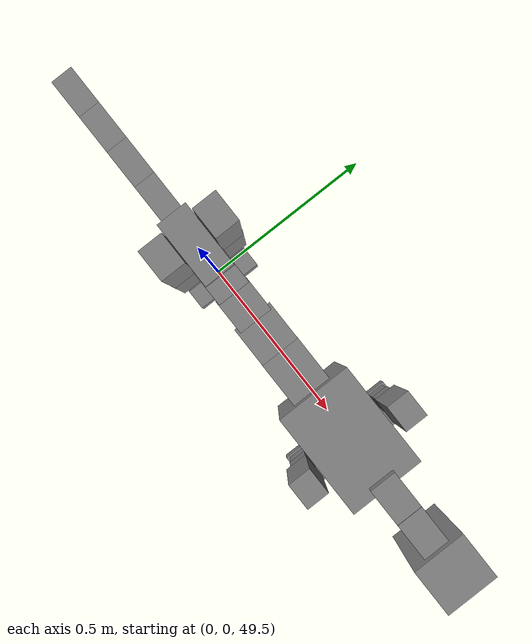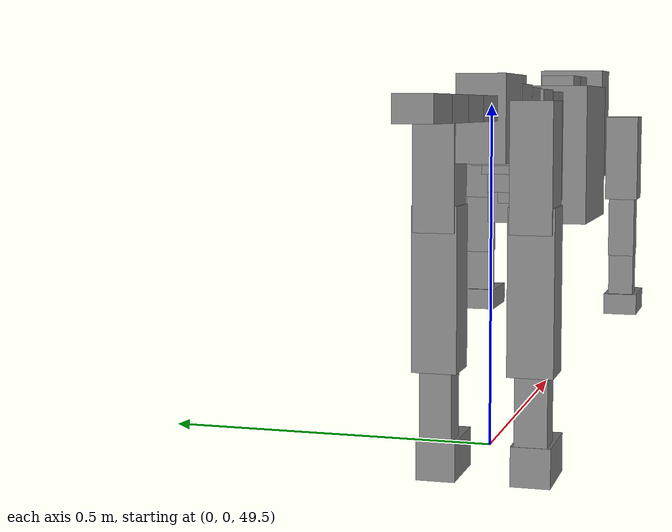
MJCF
<mujoco model="dog">

    <default>
        <joint armature="0.02" stiffness="1" damping="0.2" limited="true"/>
        <geom condim="3" friction="1 0.05 0.05" margin="0.01"/>
        <motor ctrllimited="true" ctrlrange="-1.0 1.0" forcelimited="true" gear="50"/>
    </default>

    <compiler inertiafromgeom="true" angle="radian"/>

    <option timestep="0.016" iterations="50" tolerance="1e-10" solver="Newton" jacobian="dense" cone="pyramidal"/>

    <size nconmax="20000" njmax="60000" nstack="5000000"/>
    <visual>
        <map force="0.1" zfar="30"/>
        <rgba haze="0.15 0.25 0.35 1"/>
        <quality shadowsize="2048"/>
        <global offwidth="800" offheight="800"/>
    </visual>

    <asset>
        <texture type="skybox" builtin="gradient" rgb1="0.3 0.5 0.7" rgb2="0 0 0" width="512" height="512"/>
        <texture name="texplane" type="2d" builtin="checker" rgb1=".2 .3 .4" rgb2=".1 0.15 0.2" width="512" height="512"
                 mark="cross" markrgb=".8 .8 .8"/>
        <texture name="texgeom" type="cube" builtin="flat" mark="cross" width="127" height="1278" rgb1="0.8 0.6 0.4"
                 rgb2="0.8 0.6 0.4" markrgb="1 1 1" random="0.01"/>

        <material name="matplane" reflectance="0.3" texture="texplane" texrepeat="1 1" texuniform="true"/>
        <material name="matgeom" texture="texgeom" texuniform="true" rgba="0.8 0.6 .4 1"/>
    </asset>

    <worldbody>
        <geom name="floor" pos="0 0 0" size="0 0 .25" type="plane" material="matplane" condim="3"/>

        <light directional="false" diffuse=".2 .2 .2" specular="0 0 0" pos="0 0 5" dir="0 0 -1" castshadow="false"/>
        <light mode="targetbodycom" target="torso" directional="false" diffuse=".8 .8 .8" specular="0.3 0.3 0.3"
               pos="0 0 4.0" dir="0 0 -1"/>

        <body name="root" pos="0 0 50">
            <freejoint name="root_1"/>
            <geom type="box" pos="0 0 -0.02" size="0.0774  0.0358  0.063" density="2030"/>

            <body name="spine1" pos="0.054 0 0">
                <joint name="spine1_y" axis="0 1 0" range="0 0.7" limited="true"/>
                <geom type="box" pos="0.02375 0 -0.03" size="0.04375  0.0375  0.05985" density="2030"/>

                <body name="spine2" pos="0.0612 0 0">
                    <joint name="spine2_y" axis="0 1 0" range="-0.15 0.15" limited="true"/>
                    <geom type="box" pos="0.03555  0  -0.04" size="0.04055  0.039  0.06615" density="2030"/>

                    <body name="spine3" pos="0.0730 0 0">
                        <joint name="spine3_y" axis="0 1 0" range="-0.15 0.15" limited="true"/>
                        <geom type="box" pos="0.03555  0  -0.057" size="0.04555  0.0445  0.081" density="2030"/>

                        <body name="spine4" pos="0.0780 0 0">
                            <joint name="spine4_y" axis="0 1 0" range="-0.15 0.15" limited="true"/>
                            <geom type="box" pos="0.05265  0  -0.07" size="0.05265  0.045  0.09135" density="2030"/>

                            <body name="torso" pos="0.1082 0 0">
                                <joint name="torso_y" axis="0 1 0" range="-0.15 0.15" limited="true"/>
                                <geom type="box" pos="0.11925  0  -0.085" size="0.11925  0.085  0.11745"
                                      density="2030"/>

                                <body name="neck1" pos="0.2160  0   0.0180">
                                    <joint name="neck1_y" axis="0 1 0" range="-1.2  -1" limited="true"/>
                                    <geom type="box" pos="0.0423  0  0" size="0.0423  0.03  0.036" density="2325"/>

                                    <body name="neck2" pos="0.0853  0  0">
                                        <joint name="neck2_y" axis="0 1 0" range="0.1  0" limited="true"/>
                                        <geom type="box" pos="0.0423  0  0" size="0.0423  0.03  0.036" density="2325"/>

                                        <body name="head" pos="0.0853  0  0">
                                            <joint name="head_y" axis="0 1 0" range="-0.3  -0.2" limited="true"/>
                                            <geom type="box" pos="0.0531  0  -0.055" size="0.0531  0.06  0.1044"
                                                  density="4030"/>

                                        </body>
                                    </body>
                                </body>

                                <body name="front_shoulder" pos="0.156  0   -0.0480">
                                    <joint name="front_shoulder_y" axis="0 1 0" range="-1 1.5" limited="true"/>
                                    <geom type="box" pos="0 0.13 -0.0461" size="0.0324  0.0277  0.0728" density="1158"/>
                                    <geom type="box" pos="0 -0.13 -0.0461" size="0.0324  0.0277  0.0728"
                                          density="1158"/>

                                    <body name="front_elbow" pos="0  0  -0.0923">
                                        <joint name="front_elbow_y" axis="0 1 0" range="-2 0" limited="true"/>
                                        <geom type="box" pos="0 0.13 -0.0640" size="0.0219  0.0223  0.0640"
                                              density="1081"/>
                                        <geom type="box" pos="0 -0.13 -0.0640" size="0.0219  0.0223  0.0640"
                                              density="1081"/>

                                        <body name="front_wrist" pos="0  0  -0.1280">
                                            <joint name="front_wrist_y" axis="0 1 0" range="-0.2 0" limited="true"/>
                                            <geom type="box" pos="0 0.13 -0.0422" size="0.0192  0.0214  0.0554"
                                                  density="1664"/>
                                            <geom type="box" pos="0 -0.13 -0.0422" size="0.0192  0.0214  0.0554"
                                                  density="1664"/>

                                            <body name="front_finger_end" pos="0  0  -0.0844">
                                                <joint name="front_finger_y" axis="0 1 0" range="-0.4 1"
                                                       limited="true"/>
                                                <geom type="box" pos="0.0287  0.13  -0.0030"
                                                      size="0.0526  0.0287  0.0180" density="1515"/>
                                                <geom type="box" pos="0.0287  -0.13  -0.0030"
                                                      size="0.0526  0.0287  0.0180" density="1515"/>

                                            </body>

                                        </body>
                                    </body>
                                </body>

                            </body>
                        </body>
                    </body>
                </body>
            </body>

            <body name="back_hip" pos="-0.03 0 -0.018">
                <joint name="back_hip_y" axis="0 1 0" range="-1.5 0.3" limited="true"/>
                <geom type="box" pos="0 0.07 -0.0708" size="0.0390  0.0306  0.0936" density="1154"/>
                <geom type="box" pos="0 -0.07 -0.0708" size="0.0390  0.0306  0.0936" density="1154"/>

                <body name="back_knee" pos="0  0  -0.1417">
                    <joint name="back_knee_y" axis="0 1 0" range="0 2.8" limited="true"/>
                    <geom type="box" pos="0 0.07 -0.1053" size="0.0341  0.0336  0.1208" density="1227"/>
                    <geom type="box" pos="0 -0.07 -0.1053" size="0.0341  0.0336  0.1208" density="1227"/>

                    <body name="back_ankle" pos="0  0  -0.2105">
                        <joint name="back_ankle_y" axis="0 1 0" range="-2.2 0" limited="true"/>
                        <geom type="box" pos="0 0.07 -0.0663" size="0.0240  0.0240  0.0775" density="1284"/>
                        <geom type="box" pos="0 -0.07 -0.0663" size="0.0240  0.0240  0.0775" density="1284"/>

                        <body name="back_toe_end" pos="0  0  -0.1326">
                            <joint name="back_toe_y" axis="0 1 0" range="-0.4 1" limited="true"/>
                            <geom type="box" pos="0.0293  0.07  -0.0144" size="0.0537  0.0293  0.0294" density="1515"/>
                            <geom type="box" pos="0.0293  -0.07  -0.0144" size="0.0537  0.0293  0.0294" density="1515"/>

                        </body>
                    </body>
                </body>
            </body>

            <body name="tail1" pos="-0.074 0 -0.006">
                <joint name="tail1_y" axis="0 1 0" range="-0.2 0.2" limited="true"/>
                <geom type="box" pos="-0.0536  0  0" size="0.045  0.025  0.0175" density="1587"/>

                <body name="tail2" pos="-0.09 0 0">
                    <joint name="tail2_y" axis="0 1 0" range="-0.2 0.2" limited="true"/>
                    <geom type="box" pos="-0.0536  0  0" size="0.045  0.025  0.0175" density="1587"/>

                    <body name="tail3" pos="-0.09 0 0">
                        <joint name="tail3_y" axis="0 1 0" range="-0.2 0.2" limited="true"/>
                        <geom type="box" pos="-0.0536  0  0" size="0.045  0.025  0.0175" density="1587"/>

                        <body name="tail4" pos="-0.09 0 0">
                            <joint name="tail4_y" axis="0 1 0" range="-0.2 0.2" limited="true"/>
                            <geom type="box" pos="-0.0536  0  0" size="0.045  0.025  0.0175" density="1587"/>

                        </body>
                    </body>
                </body>
            </body>
        </body>
    </worldbody>

    <actuator>
        <motor joint="spine1_y" forcerange="-150 150     "/>
        <motor joint="spine2_y" forcerange="-150 150     "/>
        <motor joint="spine3_y" forcerange="-150 150     "/>
        <motor joint="spine4_y" forcerange="-150 150     "/>
        <motor joint="torso_y" forcerange="-150 150     "/>
        <motor joint="neck1_y" forcerange="-100 100       "/>
        <motor joint="neck2_y" forcerange="-100 100       "/>
        <motor joint="head_y" forcerange="-150 150       "/>
        <motor joint="front_shoulder_y" forcerange="-117.07 167.76"/>
        <motor joint="front_elbow_y" forcerange="-155.37 107.10"/>
        <motor joint="front_wrist_y" forcerange="-85.43 85.53"/>
        <motor joint="front_finger_y" forcerange="-86.92 26.08"/>
        <motor joint="back_hip_y" forcerange="-365.14 242.88"/>
        <motor joint="back_knee_y" forcerange="-350.55 337.75"/>
        <motor joint="back_angle_y" forcerange="-137.00 147.53"/>
        <motor joint="back_toe_y" forcerange="-91.77 62.71"/>
        <motor joint="tail1_y" forcerange="-50 50     "/>
        <motor joint="tail2_y" forcerange="-50 50     "/>
        <motor joint="tail3_y" forcerange="-50 50     "/>
        <motor joint="tail4_y" forcerange="-50 50     "/>
    </actuator>
</mujoco>
